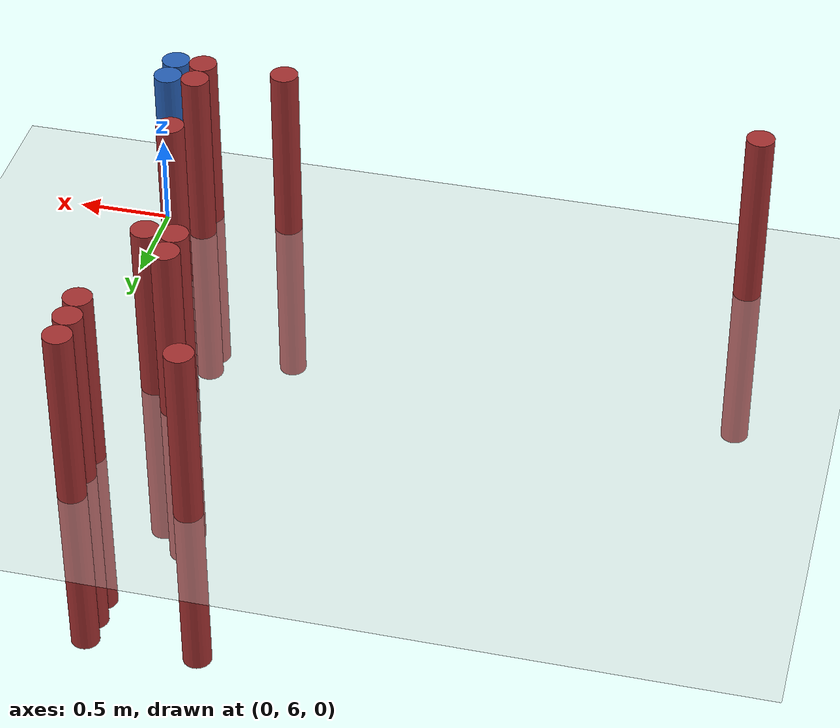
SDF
<sdf version="1.6">
 <world name="default">
  <model name="ground_plane">
   <static>1</static>
   <link name="link">
    <collision name="collision">
     <geometry><plane><normal>0 0 1</normal><size>100 100</size></plane></geometry>
     <surface><friction><ode><mu>100</mu><mu2>50</mu2></ode></friction></surface>
    </collision>
    <visual name="visual">
     <cast_shadows>0</cast_shadows>
     <geometry><plane><normal>0 0 1</normal><size>100 100</size></plane></geometry>
     <material>
      <script><uri>file://media/materials/scripts/gazebo.material</uri><name>Gazebo/Grey</name></script>
     </material>
    </visual>
   </link>
  </model>
  <model name="unit_cylinder_170">
   <static>1</static>
   <pose>-3.225000 5.925000 0.000000 0.000000 0.000000 0.000000</pose>
   <link name="link">
    <inertial>
     <mass>1</mass>
     <inertia><ixx>0.145833</ixx><ixy>0</ixy><ixz>0</ixz><iyy>0.145833</iyy><iyz>0</iyz><izz>0.125</izz></inertia>
    </inertial>
    <collision name="collision">
     <geometry><cylinder><radius>0.075000</radius><length>2</length></cylinder></geometry>
    </collision>
    <visual name="visual">
     <geometry><cylinder><radius>0.075000</radius><length>2</length></cylinder></geometry>
     <material>
      <ambient>0.648000 0.192000 0.192000 1</ambient>
      <diffuse>0.648000 0.192000 0.192000 1</diffuse>
     </material>
     <material>
      <script><name>Gazebo/Grey</name><uri>file://media/materials/scripts/gazebo.material</uri></script>
     </material>
    </visual>
   </link>
  </model>
  <model name="unit_cylinder_185">
   <static>1</static>
   <pose>-0.825000 8.325000 0.000000 0.000000 0.000000 0.000000</pose>
   <link name="link">
    <inertial>
     <mass>1</mass>
     <inertia><ixx>0.145833</ixx><ixy>0</ixy><ixz>0</ixz><iyy>0.145833</iyy><iyz>0</iyz><izz>0.125</izz></inertia>
    </inertial>
    <collision name="collision">
     <geometry><cylinder><radius>0.075000</radius><length>2</length></cylinder></geometry>
    </collision>
    <visual name="visual">
     <geometry><cylinder><radius>0.075000</radius><length>2</length></cylinder></geometry>
     <material>
      <ambient>0.648000 0.192000 0.192000 1</ambient>
      <diffuse>0.648000 0.192000 0.192000 1</diffuse>
     </material>
     <material>
      <script><name>Gazebo/Grey</name><uri>file://media/materials/scripts/gazebo.material</uri></script>
     </material>
    </visual>
   </link>
  </model>
  <model name="unit_cylinder_188">
   <static>1</static>
   <pose>-0.675000 5.925000 0.000000 0.000000 0.000000 0.000000</pose>
   <link name="link">
    <inertial>
     <mass>1</mass>
     <inertia><ixx>0.145833</ixx><ixy>0</ixy><ixz>0</ixz><iyy>0.145833</iyy><iyz>0</iyz><izz>0.125</izz></inertia>
    </inertial>
    <collision name="collision">
     <geometry><cylinder><radius>0.075000</radius><length>2</length></cylinder></geometry>
    </collision>
    <visual name="visual">
     <geometry><cylinder><radius>0.075000</radius><length>2</length></cylinder></geometry>
     <material>
      <ambient>0.648000 0.192000 0.192000 1</ambient>
      <diffuse>0.648000 0.192000 0.192000 1</diffuse>
     </material>
     <material>
      <script><name>Gazebo/Grey</name><uri>file://media/materials/scripts/gazebo.material</uri></script>
     </material>
    </visual>
   </link>
  </model>
  <model name="unit_cylinder_191">
   <static>1</static>
   <pose>-0.525000 7.425000 0.000000 0.000000 0.000000 0.000000</pose>
   <link name="link">
    <inertial>
     <mass>1</mass>
     <inertia><ixx>0.145833</ixx><ixy>0</ixy><ixz>0</ixz><iyy>0.145833</iyy><iyz>0</iyz><izz>0.125</izz></inertia>
    </inertial>
    <collision name="collision">
     <geometry><cylinder><radius>0.075000</radius><length>2</length></cylinder></geometry>
    </collision>
    <visual name="visual">
     <geometry><cylinder><radius>0.075000</radius><length>2</length></cylinder></geometry>
     <material>
      <ambient>0.648000 0.192000 0.192000 1</ambient>
      <diffuse>0.648000 0.192000 0.192000 1</diffuse>
     </material>
     <material>
      <script><name>Gazebo/Grey</name><uri>file://media/materials/scripts/gazebo.material</uri></script>
     </material>
    </visual>
   </link>
  </model>
  <model name="unit_cylinder_192">
   <static>1</static>
   <pose>-0.525000 7.575000 0.000000 0.000000 0.000000 0.000000</pose>
   <link name="link">
    <inertial>
     <mass>1</mass>
     <inertia><ixx>0.145833</ixx><ixy>0</ixy><ixz>0</ixz><iyy>0.145833</iyy><iyz>0</iyz><izz>0.125</izz></inertia>
    </inertial>
    <collision name="collision">
     <geometry><cylinder><radius>0.075000</radius><length>2</length></cylinder></geometry>
    </collision>
    <visual name="visual">
     <geometry><cylinder><radius>0.075000</radius><length>2</length></cylinder></geometry>
     <material>
      <ambient>0.648000 0.192000 0.192000 1</ambient>
      <diffuse>0.648000 0.192000 0.192000 1</diffuse>
     </material>
     <material>
      <script><name>Gazebo/Grey</name><uri>file://media/materials/scripts/gazebo.material</uri></script>
     </material>
    </visual>
   </link>
  </model>
  <model name="unit_cylinder_194">
   <static>1</static>
   <pose>-0.375000 7.425000 0.000000 0.000000 0.000000 0.000000</pose>
   <link name="link">
    <inertial>
     <mass>1</mass>
     <inertia><ixx>0.145833</ixx><ixy>0</ixy><ixz>0</ixz><iyy>0.145833</iyy><iyz>0</iyz><izz>0.125</izz></inertia>
    </inertial>
    <collision name="collision">
     <geometry><cylinder><radius>0.075000</radius><length>2</length></cylinder></geometry>
    </collision>
    <visual name="visual">
     <geometry><cylinder><radius>0.075000</radius><length>2</length></cylinder></geometry>
     <material>
      <ambient>0.648000 0.192000 0.192000 1</ambient>
      <diffuse>0.648000 0.192000 0.192000 1</diffuse>
     </material>
     <material>
      <script><name>Gazebo/Grey</name><uri>file://media/materials/scripts/gazebo.material</uri></script>
     </material>
    </visual>
   </link>
  </model>
  <model name="unit_cylinder_197">
   <static>1</static>
   <pose>-0.225000 5.925000 0.000000 0.000000 0.000000 0.000000</pose>
   <link name="link">
    <inertial>
     <mass>1</mass>
     <inertia><ixx>0.145833</ixx><ixy>0</ixy><ixz>0</ixz><iyy>0.145833</iyy><iyz>0</iyz><izz>0.125</izz></inertia>
    </inertial>
    <collision name="collision">
     <geometry><cylinder><radius>0.075000</radius><length>2</length></cylinder></geometry>
    </collision>
    <visual name="visual">
     <geometry><cylinder><radius>0.075000</radius><length>2</length></cylinder></geometry>
     <material>
      <ambient>0.648000 0.192000 0.192000 1</ambient>
      <diffuse>0.648000 0.192000 0.192000 1</diffuse>
     </material>
     <material>
      <script><name>Gazebo/Grey</name><uri>file://media/materials/scripts/gazebo.material</uri></script>
     </material>
    </visual>
   </link>
  </model>
  <model name="unit_cylinder_198">
   <static>1</static>
   <pose>-0.225000 6.075000 0.000000 0.000000 0.000000 0.000000</pose>
   <link name="link">
    <inertial>
     <mass>1</mass>
     <inertia><ixx>0.145833</ixx><ixy>0</ixy><ixz>0</ixz><iyy>0.145833</iyy><iyz>0</iyz><izz>0.125</izz></inertia>
    </inertial>
    <collision name="collision">
     <geometry><cylinder><radius>0.075000</radius><length>2</length></cylinder></geometry>
    </collision>
    <visual name="visual">
     <geometry><cylinder><radius>0.075000</radius><length>2</length></cylinder></geometry>
     <material>
      <ambient>0.648000 0.192000 0.192000 1</ambient>
      <diffuse>0.648000 0.192000 0.192000 1</diffuse>
     </material>
     <material>
      <script><name>Gazebo/Grey</name><uri>file://media/materials/scripts/gazebo.material</uri></script>
     </material>
    </visual>
   </link>
  </model>
  <model name="unit_cylinder_199">
   <static>1</static>
   <pose>-0.225000 6.525000 0.000000 0.000000 0.000000 0.000000</pose>
   <link name="link">
    <inertial>
     <mass>1</mass>
     <inertia><ixx>0.145833</ixx><ixy>0</ixy><ixz>0</ixz><iyy>0.145833</iyy><iyz>0</iyz><izz>0.125</izz></inertia>
    </inertial>
    <collision name="collision">
     <geometry><cylinder><radius>0.075000</radius><length>2</length></cylinder></geometry>
    </collision>
    <visual name="visual">
     <geometry><cylinder><radius>0.075000</radius><length>2</length></cylinder></geometry>
     <material>
      <ambient>0.648000 0.192000 0.192000 1</ambient>
      <diffuse>0.648000 0.192000 0.192000 1</diffuse>
     </material>
     <material>
      <script><name>Gazebo/Grey</name><uri>file://media/materials/scripts/gazebo.material</uri></script>
     </material>
    </visual>
   </link>
  </model>
  <model name="unit_cylinder_200">
   <static>1</static>
   <pose>-0.225000 8.025000 0.000000 0.000000 0.000000 0.000000</pose>
   <link name="link">
    <inertial>
     <mass>1</mass>
     <inertia><ixx>0.145833</ixx><ixy>0</ixy><ixz>0</ixz><iyy>0.145833</iyy><iyz>0</iyz><izz>0.125</izz></inertia>
    </inertial>
    <collision name="collision">
     <geometry><cylinder><radius>0.075000</radius><length>2</length></cylinder></geometry>
    </collision>
    <visual name="visual">
     <geometry><cylinder><radius>0.075000</radius><length>2</length></cylinder></geometry>
     <material>
      <ambient>0.648000 0.192000 0.192000 1</ambient>
      <diffuse>0.648000 0.192000 0.192000 1</diffuse>
     </material>
     <material>
      <script><name>Gazebo/Grey</name><uri>file://media/materials/scripts/gazebo.material</uri></script>
     </material>
    </visual>
   </link>
  </model>
  <model name="unit_cylinder_201">
   <static>1</static>
   <pose>-0.225000 8.175000 0.000000 0.000000 0.000000 0.000000</pose>
   <link name="link">
    <inertial>
     <mass>1</mass>
     <inertia><ixx>0.145833</ixx><ixy>0</ixy><ixz>0</ixz><iyy>0.145833</iyy><iyz>0</iyz><izz>0.125</izz></inertia>
    </inertial>
    <collision name="collision">
     <geometry><cylinder><radius>0.075000</radius><length>2</length></cylinder></geometry>
    </collision>
    <visual name="visual">
     <geometry><cylinder><radius>0.075000</radius><length>2</length></cylinder></geometry>
     <material>
      <ambient>0.648000 0.192000 0.192000 1</ambient>
      <diffuse>0.648000 0.192000 0.192000 1</diffuse>
     </material>
     <material>
      <script><name>Gazebo/Grey</name><uri>file://media/materials/scripts/gazebo.material</uri></script>
     </material>
    </visual>
   </link>
  </model>
  <model name="unit_cylinder_202">
   <static>1</static>
   <pose>-0.225000 8.325000 0.000000 0.000000 0.000000 0.000000</pose>
   <link name="link">
    <inertial>
     <mass>1</mass>
     <inertia><ixx>0.145833</ixx><ixy>0</ixy><ixz>0</ixz><iyy>0.145833</iyy><iyz>0</iyz><izz>0.125</izz></inertia>
    </inertial>
    <collision name="collision">
     <geometry><cylinder><radius>0.075000</radius><length>2</length></cylinder></geometry>
    </collision>
    <visual name="visual">
     <geometry><cylinder><radius>0.075000</radius><length>2</length></cylinder></geometry>
     <material>
      <ambient>0.648000 0.192000 0.192000 1</ambient>
      <diffuse>0.648000 0.192000 0.192000 1</diffuse>
     </material>
     <material>
      <script><name>Gazebo/Grey</name><uri>file://media/materials/scripts/gazebo.material</uri></script>
     </material>
    </visual>
   </link>
  </model>
  <model name="unit_cylinder_211">
   <static>1</static>
   <pose>-0.075000 5.925000 0.000000 0.000000 0.000000 0.000000</pose>
   <link name="link">
    <inertial>
     <mass>1</mass>
     <inertia><ixx>0.145833</ixx><ixy>0</ixy><ixz>0</ixz><iyy>0.145833</iyy><iyz>0</iyz><izz>0.125</izz></inertia>
    </inertial>
    <collision name="collision">
     <geometry><cylinder><radius>0.075000</radius><length>2</length></cylinder></geometry>
    </collision>
    <visual name="visual">
     <geometry><cylinder><radius>0.075000</radius><length>2</length></cylinder></geometry>
     <material>
      <ambient>0.152000 0.379000 0.720000 1</ambient>
      <diffuse>0.152000 0.379000 0.720000 1</diffuse>
     </material>
     <material>
      <script><name>Gazebo/Grey</name><uri>file://media/materials/scripts/gazebo.material</uri></script>
     </material>
    </visual>
   </link>
  </model>
  <model name="unit_cylinder_212">
   <static>1</static>
   <pose>-0.075000 6.075000 0.000000 0.000000 0.000000 0.000000</pose>
   <link name="link">
    <inertial>
     <mass>1</mass>
     <inertia><ixx>0.145833</ixx><ixy>0</ixy><ixz>0</ixz><iyy>0.145833</iyy><iyz>0</iyz><izz>0.125</izz></inertia>
    </inertial>
    <collision name="collision">
     <geometry><cylinder><radius>0.075000</radius><length>2</length></cylinder></geometry>
    </collision>
    <visual name="visual">
     <geometry><cylinder><radius>0.075000</radius><length>2</length></cylinder></geometry>
     <material>
      <ambient>0.152000 0.379000 0.720000 1</ambient>
      <diffuse>0.152000 0.379000 0.720000 1</diffuse>
     </material>
     <material>
      <script><name>Gazebo/Grey</name><uri>file://media/materials/scripts/gazebo.material</uri></script>
     </material>
    </visual>
   </link>
  </model>
 </world>
</sdf>
